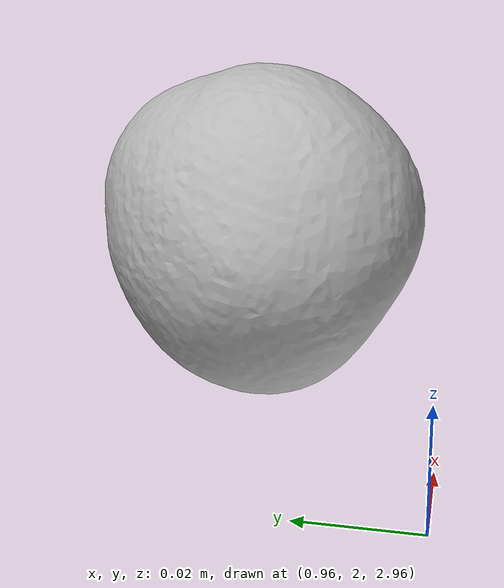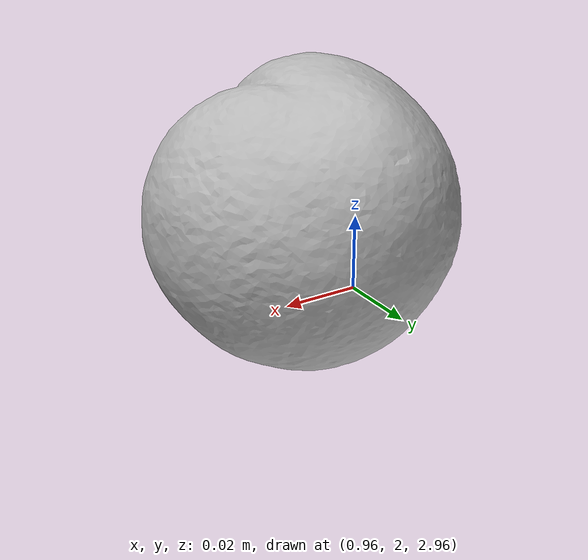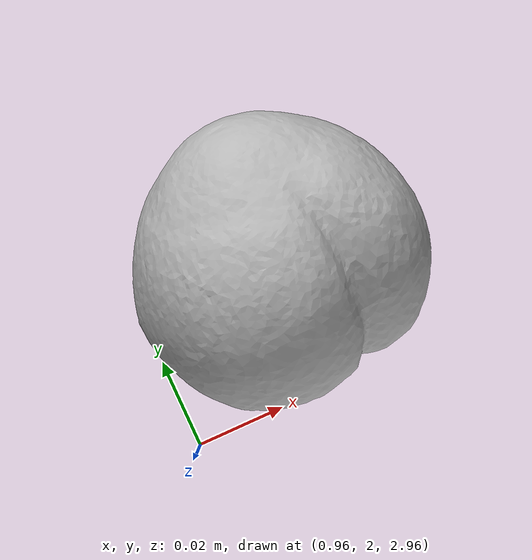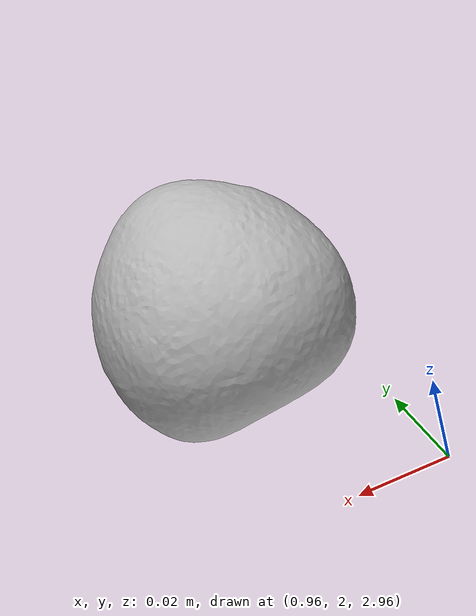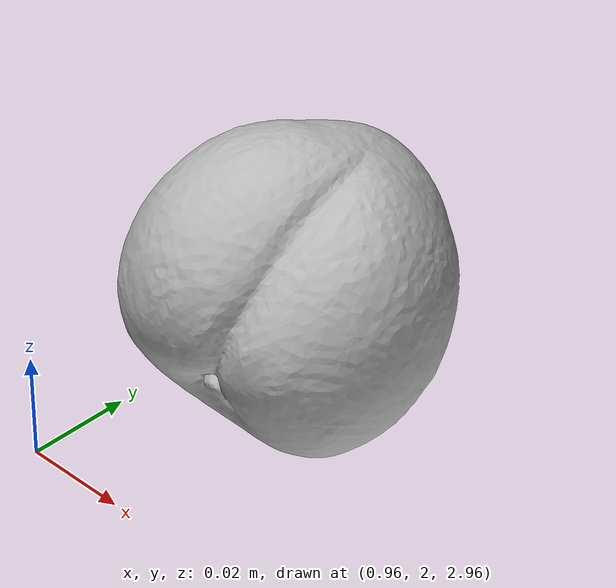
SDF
<?xml version="1.0" ?>
<!--
This SDF file was automatically generated using a template modified
and authored by Adwait Naik. The moment of interia is not supposed to be changed.
-->
<sdf version="1.7">
    <model name="plum">
      <pose>1.0 2.0 3.0 -1.0 0 0</pose>
      <link name="link">
        <inertial>
          <inertia>
           <ixx>2.7178060074813215e-08</ixx>
           <ixy>9.850266641398487e-25</ixy>
           <ixz>-8.325319287429276e-26</ixz>
           <iyy>2.6210855583690036e-08</iyy>
           <iyz>1.101797017289511e-25</iyz>
           <izz>2.506526385421526e-08</izz>
          </inertia>
          <mass>8.61776383862375e-05</mass>
        </inertial>
        <collision name="collision">
          <geometry>
          	<mesh>
             <uri>plum.dae</uri>
            </mesh>
          </geometry>
        </collision>

        <visual name="visual">
          <geometry>
          	<mesh>
            <uri>plum.dae</uri>
	        </mesh>
          </geometry>
        </visual>
      </link>
    </model>
</sdf>
